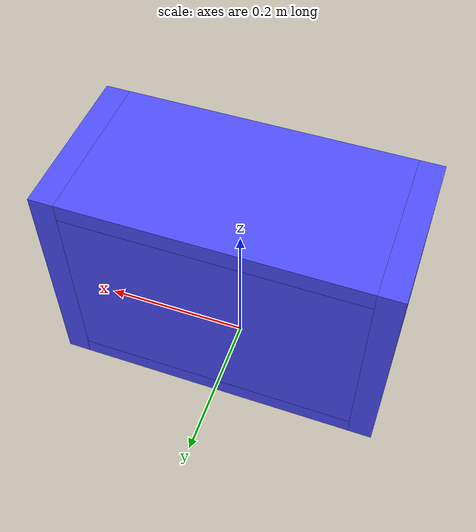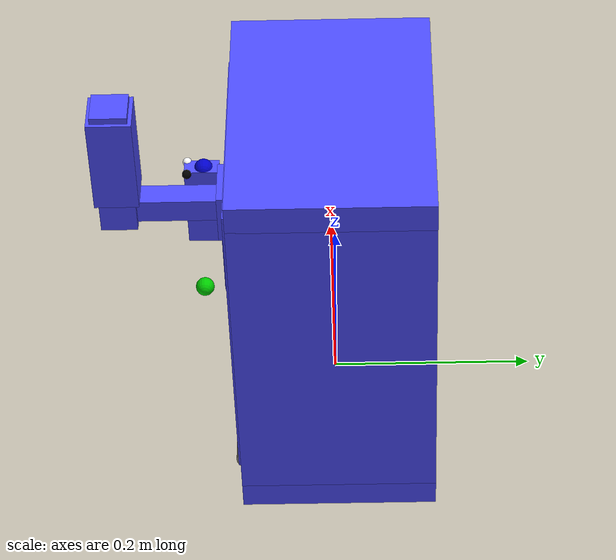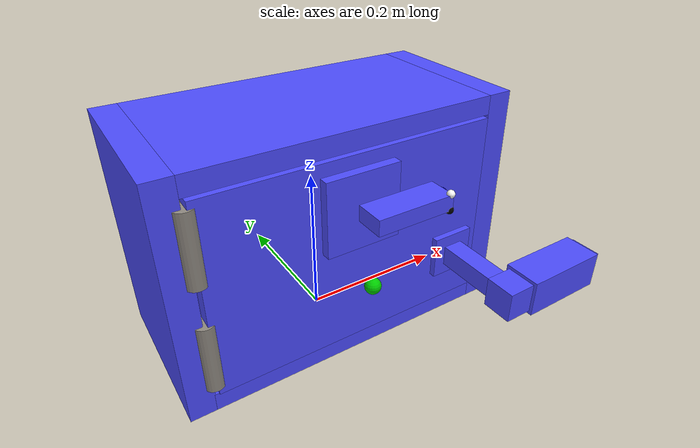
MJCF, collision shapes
<mujoco>
  <compiler angle="radian" inertiafromgeom="auto" inertiagrouprange="4 5"/>
    <asset>
        <texture name="T_dl_met" type="cube" file="../textures/metal1.png"/>
        <texture name="T_dl_met2" type="cube" file="../textures/metal2.png"/>

        <material name="dl_col" rgba="0.3 0.3 1.0 0.5" shininess="0" specular="0"/>
        <material name="dl_metal" rgba=".75 .75 .75 1" texture="T_dl_met" texuniform="true" shininess="1" reflectance="1" specular="1"/>
        <material name="dl_metal2" rgba=".3 .32 .35 1" texture="T_dl_met2" texuniform="true" shininess="1" reflectance="1" specular="1"/>

        <mesh file="../objects/meshes/doorlock/safe.stl" name="safe"/>
        <mesh file="../objects/meshes/doorlock/door.stl" name="door"/>
        <mesh file="../objects/meshes/doorlock/door_handle.stl" name="door_handle"/>
        <mesh file="../objects/meshes/doorlock/handle_base.stl" name="handle_base"/>
        <mesh file="../objects/meshes/doorlock/lock.stl" name="lock"/>
        <mesh file="../objects/meshes/doorlock/lock_base.stl" name="lock_base"/>
    </asset>
    <default>

      <default class="dl_base">
          <joint armature="0.001" damping="2" limited="true"/>
          <geom conaffinity="0" contype="0" group="1" type="mesh"/>
          <position ctrllimited="true" ctrlrange="0 1.57"/>
          <default class="dl_viz">
              <geom condim="4" type="mesh"/>
          </default>
          <default class="dl_col">
              <geom conaffinity="1" condim="3" contype="1" group="4" material="dl_col" solimp="0.99 0.99 0.01" solref="0.01 1"/>
          </default>
      </default>
    </default>

    <worldbody>
        <body childclass="dl_base" name="doorlockA" pos = "0 0 .15">
            <geom material="dl_metal2" mesh="safe"/>
            <geom class="dl_col" pos="-0.204 0 0" size="0.016 0.106 0.15" type="box"/>
            <geom class="dl_col" pos="0.204 0 0" size="0.016 0.106 0.15" type="box"/>
            <geom class="dl_col" pos="0 0 0.138" size="0.188 0.106 0.012" type="box"/>
            <geom class="dl_col" pos="0 0 -0.138" size="0.189 0.106 0.012" type="box"/>
            <geom class="dl_col" pos="0 0.094 0" size="0.188 0.012 0.126" type="box"/>
            <body name="door_link" pos="-0.185 -0.1 0">
                <geom material="dl_metal2" mesh="door" pos="0.185 0 0"/>
                <geom material="dl_metal" euler="1.57 0 0" mesh="door_handle" pos="0.325 -0.062 -0.05"/>
                <geom material="dl_metal" mesh="handle_base" pos="0.325 -0.006 -0.05"/>
                <geom material="dl_metal" mesh="lock_base" pos="0.185 -0.009 0.061"/>
                <geom material="dl_metal" pos="0 0 .07" size="0.013 .045" type="cylinder"/>
                <geom material="dl_metal" pos="0 0 -.07" size="0.013 .045" type="cylinder"/>
                <!-- replaces above two cylinder tags with box -->

                <geom class="dl_col" pos="0.185 -0.009 0.061" size="0.047 0.013 0.047" type="box"/>
                <geom class="dl_col" pos="0.325 -0.006 -0.05" size="0.028 0.012 0.028" type="box"/>
                <geom class="dl_col" euler="1.57 0 0" pos="0.325 -0.065 -0.05" size="0.013 0.013 0.047" type="box"/>
                <geom class="dl_col" euler="0 1.57 0" pos="0.381 -0.12 -0.05" size="0.019 0.019 0.075" type="box"/>
                <geom class="dl_col" euler="0 1.57 0" pos="0.395 -0.12 -0.05" size="0.023 0.023 0.054" type="box"/>
                <geom class="dl_col" pos="0.185 0 0" size="0.184 0.01 0.124" type="box"/>
                <body name="lock_link" pos="0.185 -0.018 0.061">
                    <joint type="hinge" axis="0 1 0" range="0 1.57"/>
                    <geom material="dl_metal" mesh="lock" pos="0.042 -0.022 0"/>
                    <geom class="dl_col" pos="0.042 -0.024 0" size="0.05 0.019 0.01" type="box" mass=".001"/>
                    <site name="lockStartLock" pos="0.09 -0.04 0.01" size="0.005" rgba="1 1 1 1"/>
                    <site name="lockStartUnlock" pos="0.09 -0.04 -0.01" size="0.005" rgba="0 0 0 1"/>
                </body>
            </body>
            <site name="goal_lock" pos="0 -0.14 -.03" size="0.01"
          rgba="0 0.8 0 1"/>
        <site name="goal_unlock" pos="0.09 -0.14 0.061" size="0.01"
            rgba="0 0 0.8 1"/>
        </body>

    </worldbody>
</mujoco>
